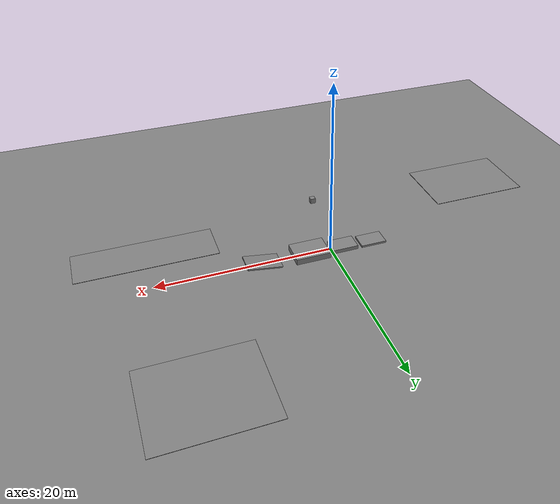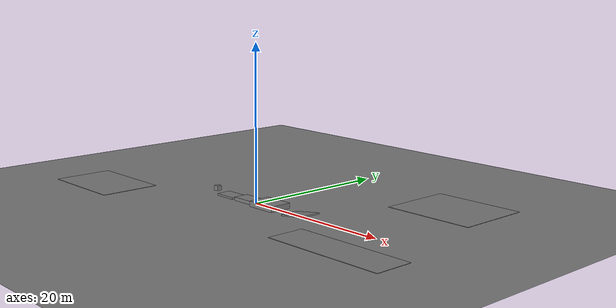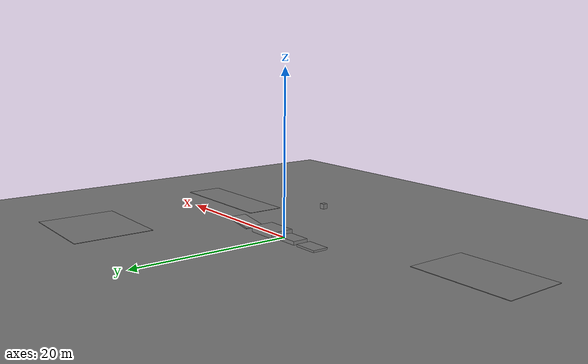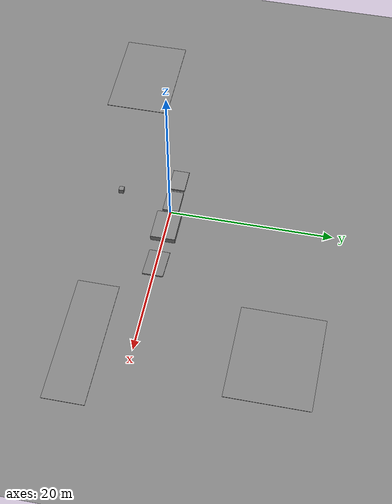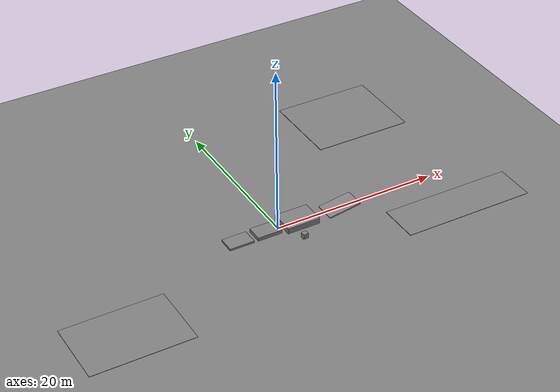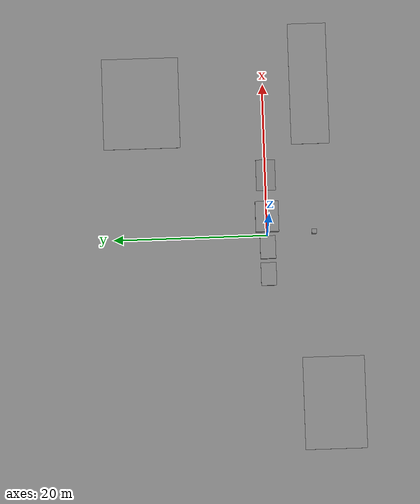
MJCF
<mujoco model="worldstage_physical_world">
  <compiler angle="radian" coordinate="local" />
  <option gravity="0 0 -9.81" timestep="0.005" />
  <worldbody>
    <geom name="ground" type="plane" size="40 40 0.1" friction="0.8 0.01 0.0001" />
    <body name="step-a" pos="-5.0 0.0 0.12" euler="0 0 0">
      <geom name="step-a-geom" type="box" size="1.5 1.0 0.12" friction="0.85 0.01 0.0001" />
    </body>
    <body name="step-b" pos="-1.5 0.0 0.22" euler="0 0 0">
      <geom name="step-b-geom" type="box" size="1.5 1.0 0.22" friction="0.85 0.01 0.0001" />
    </body>
    <body name="platform" pos="2.5 0.0 0.35" euler="0 0 0">
      <geom name="platform-geom" type="box" size="2.0 1.5 0.35" friction="0.8 0.01 0.0001" />
    </body>
    <body name="ramp" pos="8.0 0.0 0.27" euler="0 -0.15 0">
      <geom name="ramp-geom" type="box" size="2.0 1.25 0.08" friction="0.65 0.01 0.0001" />
    </body>
    <body name="test-cube" pos="0.0 -6.0 3.0" euler="0 0 0">
      <freejoint />
      <geom name="test-cube-geom" type="box" size="0.3 0.3 0.3" friction="0.65 0.01 0.0001" mass="2.0" />
    </body>
    <body name="wet-yard" pos="-22.0 -8.0 0.025" euler="0 0 0">
      <geom name="wet-yard-geom" type="box" size="6.0 4.0 0.025" friction="0.25 0.01 0.0001" />
    </body>
    <body name="rough-lane" pos="20.0 -6.0 0.025" euler="0 0 0">
      <geom name="rough-lane-geom" type="box" size="8.0 2.5 0.025" friction="1.15 0.01 0.0001" />
    </body>
    <body name="wood-yard" pos="18.0 16.0 0.025" euler="0 0 0">
      <geom name="wood-yard-geom" type="box" size="6.0 5.0 0.025" friction="0.55 0.01 0.0001" />
    </body>
  </worldbody>
</mujoco>
